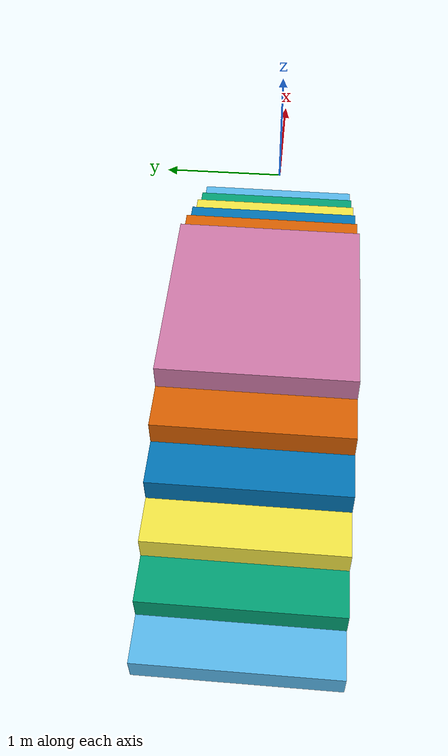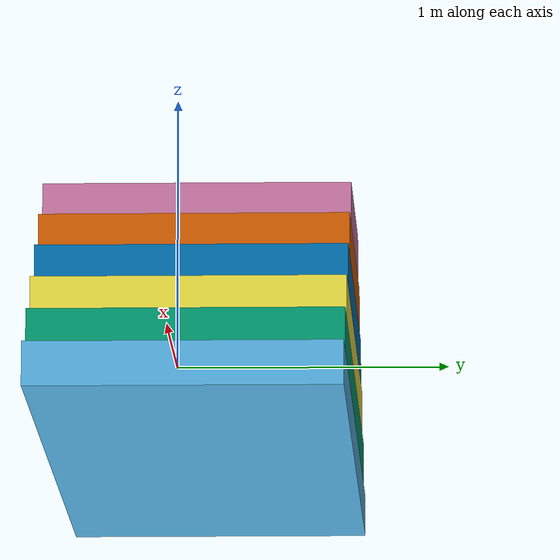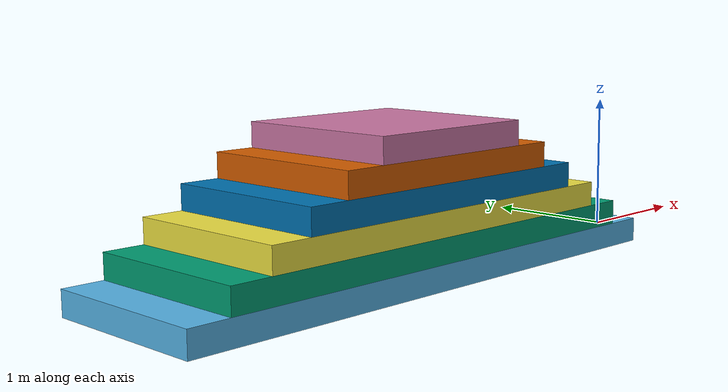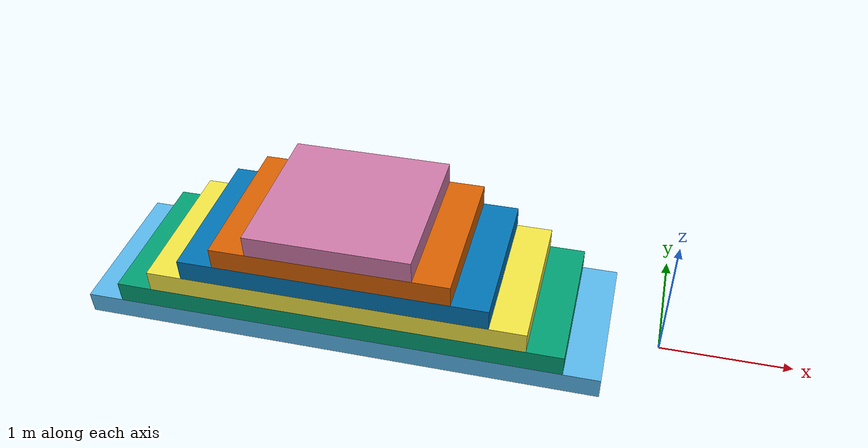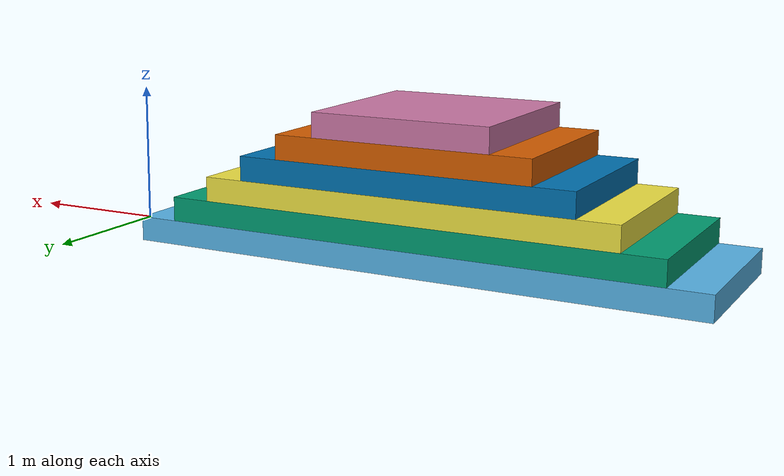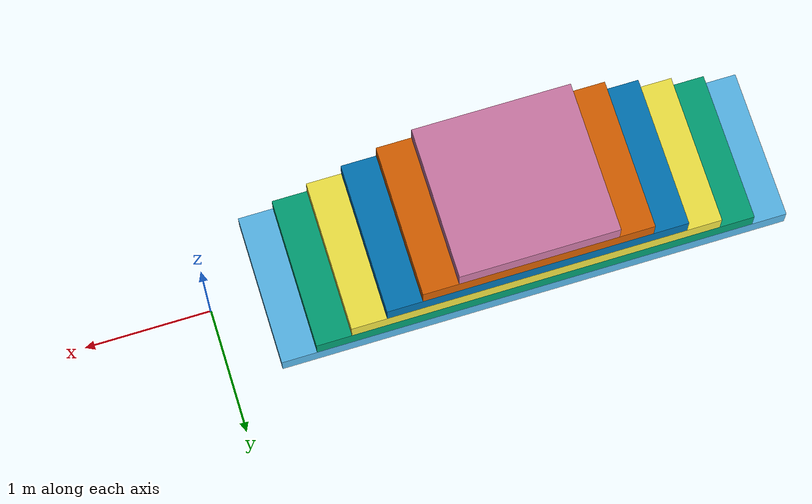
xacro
<?xml version="1.0"?>
<robot name="stairs" xmlns:xacro="http://www.ros.org/wiki/xacro">
    <gazebo>
        <static>true</static>
    </gazebo>

    <!-- Sizes from the rules of the cybathlon 2020 -->
    <xacro:property name="step_height" default="0.170"/>
    <xacro:property name="step_depth" default="0.280"/>
    <xacro:property name="stairs_width" default="1.206"/>
    <xacro:property name="stairs_length" default="4.050"/>
    <xacro:property name="distance_to_origin" default="0.4"/>

    <xacro:property name="parent_name" value="world"/>
    <xacro:property name="mu1" value="1.0"/>
    <xacro:property name="mu2" value="1.0"/>
    <!-- Minimum allowable depth before contact correction impulse is applied. -->
    <xacro:property name="min_depth" value="0.0005"/>

    <!-- Used for fixing robot to Gazebo 'base_link' -->
    <link name="${parent_name}"/>

    <!-- Links -->
    <link name="step_1">
        <collision>
          <geometry>
            <box size="${stairs_length} ${stairs_width} ${step_height}" />
          </geometry>
        </collision>

        <visual name='visual'>
          <geometry>
            <box size="${stairs_length} ${stairs_width} ${step_height}" />
          </geometry>
        </visual>
        <inertial>
            <origin xyz="0 0 0" rpy="0 0 0"/>
            <mass value="1"/>
            <inertia
                    ixx="1"
                    ixy="1"
                    ixz="1"
                    iyy="1"
                    iyz="1"
                    izz="1" />
        </inertial>
    </link>

    <link name="step_2">
        <collision>
          <origin xyz="0 0 0" rpy="0 0 0"/>
          <geometry>
            <box size="${stairs_length - 2 * step_depth} ${stairs_width} ${step_height}" />
          </geometry>
        </collision>

        <visual name='visual'>
          <origin xyz="0 0 0" rpy="0 0 0"/>
          <geometry>
            <box size="${stairs_length - 2 * step_depth} ${stairs_width} ${step_height}" />
          </geometry>
        </visual>
    </link>

    <link name="step_3">
        <collision>
          <origin xyz="0 0 0" rpy="0 0 0"/>
          <geometry>
            <box size="${stairs_length - 4 * step_depth} ${stairs_width} ${step_height}" />
          </geometry>
        </collision>

        <visual name='visual'>
          <origin xyz="0 0 0" rpy="0 0 0"/>
          <geometry>
            <box size="${stairs_length - 4 * step_depth} ${stairs_width} ${step_height}" />
          </geometry>
        </visual>
    </link>

    <link name="step_4">
        <collision>
          <origin xyz="0 0 0" rpy="0 0 0"/>
          <geometry>
            <box size="${stairs_length - 6 * step_depth} ${stairs_width} ${step_height}" />
          </geometry>
        </collision>

        <visual name='visual'>
          <origin xyz="0 0 0" rpy="0 0 0"/>
          <geometry>
            <box size="${stairs_length - 6 * step_depth} ${stairs_width} ${step_height}" />
          </geometry>
        </visual>
    </link>

    <link name="step_5">
        <collision>
          <origin xyz="0 0 0" rpy="0 0 0"/>
          <geometry>
            <box size="${stairs_length - 8 * step_depth} ${stairs_width} ${step_height}" />
          </geometry>
        </collision>

        <visual name='visual'>
          <origin xyz="0 0 0" rpy="0 0 0"/>
          <geometry>
            <box size="${stairs_length - 8 * step_depth} ${stairs_width} ${step_height}" />
          </geometry>
        </visual>
    </link>

    <link name="step_6">
        <collision>
          <origin xyz="0 0 0" rpy="0 0 0"/>
          <geometry>
            <box size="${stairs_length - 10 * step_depth} ${stairs_width} ${step_height}" />
          </geometry>
        </collision>

        <visual name='visual'>
          <origin xyz="0 0 0" rpy="0 0 0"/>
          <geometry>
            <box size="${stairs_length - 10 * step_depth} ${stairs_width} ${step_height}" />
          </geometry>
        </visual>
    </link>

    <gazebo reference="step_1">
        <mu1>${mu1}</mu1>
        <mu2>${mu2}</mu2>
        <minDepth>${min_depth}</minDepth>
    </gazebo>

    <gazebo reference="step_2">
        <mu1>${mu1}</mu1>
        <mu2>${mu2}</mu2>
        <minDepth>${min_depth}</minDepth>
    </gazebo>

    <gazebo reference="step_3">
        <mu1>${mu1}</mu1>
        <mu2>${mu2}</mu2>
        <minDepth>${min_depth}</minDepth>
    </gazebo>

    <gazebo reference="step_4">
        <mu1>${mu1}</mu1>
        <mu2>${mu2}</mu2>
        <minDepth>${min_depth}</minDepth>
    </gazebo>

    <gazebo reference="step_5">
        <mu1>${mu1}</mu1>
        <mu2>${mu2}</mu2>
        <minDepth>${min_depth}</minDepth>
    </gazebo>

    <gazebo reference="step_6">
        <mu1>${mu1}</mu1>
        <mu2>${mu2}</mu2>
        <minDepth>${min_depth}</minDepth>
    </gazebo>

    <!-- Joints -->
    <joint name="joint_0" type="fixed">
        <parent link="${parent_name}"/>
        <child link="step_1"/>
        <origin xyz="${-distance_to_origin - stairs_length / 2} 0 ${step_height / 2}" rpy="0 0 0"/>
    </joint>

    <joint name="joint_1" type="fixed">
        <parent link="step_1"/>
        <child link="step_2"/>
        <origin xyz="0 0 ${step_height}" rpy="0 0 0"/>
    </joint>

    <joint name="joint_2" type="fixed">
        <parent link="step_2"/>
        <child link="step_3"/>
        <origin xyz="0 0 ${step_height}" rpy="0 0 0"/>
    </joint>

    <joint name="joint_3" type="fixed">
        <parent link="step_3"/>
        <child link="step_4"/>
        <origin xyz="0 0 ${step_height}" rpy="0 0 0"/>
    </joint>

    <joint name="joint_4" type="fixed">
        <parent link="step_4"/>
        <child link="step_5"/>
        <origin xyz="0 0 ${step_height}" rpy="0 0 0"/>
    </joint>

    <joint name="joint_5" type="fixed">
        <parent link="step_5"/>
        <child link="step_6"/>
        <origin xyz="0 0 ${step_height}" rpy="0 0 0"/>
    </joint>

</robot>
